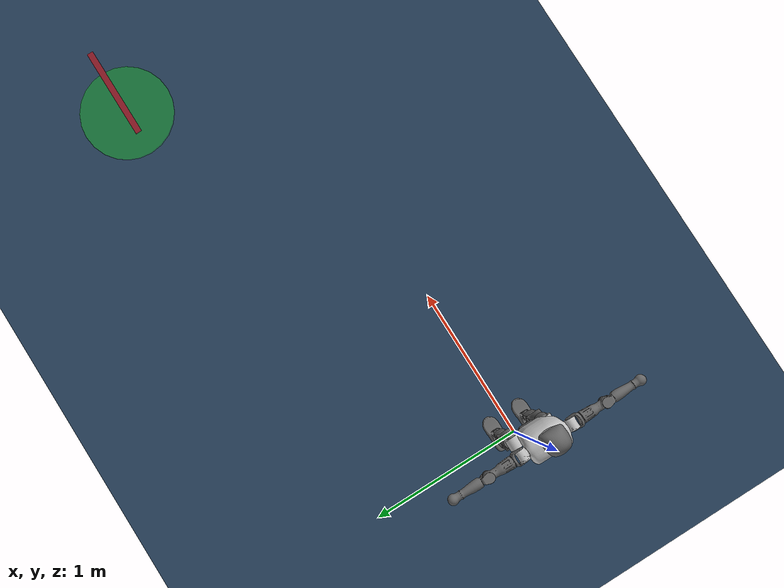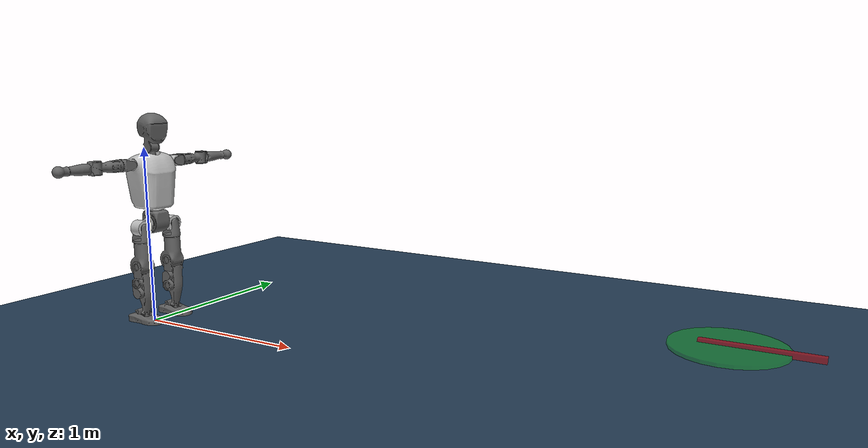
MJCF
<mujoco model="t1 navigation scene">
  <!-- Inherits t1.xml's simulation options (dt=.002, Euler, iterations=3/ls=5),
       matching the mujoco_playground T1 joystick training/deploy settings. -->
  <include file="t1.xml"/>

  <statistic center="0.0 0.0 0.5" extent="3"/>

  <visual>
    <headlight diffuse="0.6 0.6 0.6" ambient="0.1 0.1 0.1" specular="0.9 0.9 0.9"/>
    <rgba haze="0.15 0.25 0.35 1"/>
    <global azimuth="140" elevation="-20"/>
  </visual>

  <asset>
    <texture type="skybox" builtin="gradient" rgb1="0.3 0.5 0.7" rgb2="0 0 0" width="512" height="3072"/>
    <texture type="2d" name="groundplane" builtin="checker" mark="edge" rgb1="0.2 0.3 0.4" rgb2="0.1 0.2 0.3"
      markrgb="0.8 0.8 0.8" width="300" height="300"/>
    <material name="groundplane" texture="groundplane" texuniform="true" texrepeat="5 5" reflectance="0.2"/>
    <material name="goal_marker_mat" rgba="0 1 0 0.3"/>
  </asset>

  <worldbody>
    <geom name="floor" size="0 0 0.05" type="plane" material="groundplane" priority="1" friction="0.6" contype="1"
      conaffinity="2" condim="3"/>

    <!-- Goal marker (mocap body for interactive dragging) -->
    <body name="goal_marker" mocap="true" pos="3.0 1.0 0.05">
      <geom type="cylinder" size="0.3 0.01" material="goal_marker_mat" contype="0" conaffinity="0"/>
      <!-- Direction indicator -->
      <geom type="box" size="0.3 0.02 0.015" pos="0.15 0 0.01" rgba="1 0 0 0.5" contype="0" conaffinity="0"/>
    </body>
  </worldbody>

  <keyframe>
    <key name="home"
      qpos="
    0 0 0.665
    1 0 0 0
    0 0
    0 -1.4 0 -0.4
    0 1.4 0 0.4
    0
    -0.2 0 0 0.4 -0.2 0
    -0.2 0 0 0.4 -0.2 0
    "
      ctrl="
    0 0
    0 -1.4 0 -0.4
    0 1.4 0 0.4
    0
    -0.2 0 0 0.4 -0.2 0
    -0.2 0 0 0.4 -0.2 0
    "/>
  </keyframe>
</mujoco>

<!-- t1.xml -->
<mujoco model="T1">
  <compiler angle="radian" meshdir="assets" autolimits="true"/>

  <option iterations="3" ls_iterations="5" timestep=".002" integrator="Euler">
    <flag eulerdamp="disable"/>
  </option>

  <asset>
    <material name="light_gray" rgba="0.76 0.76 0.76 1"/>
    <material name="medium_gray" rgba="0.4 0.4 0.4 1"/>

    <mesh file="Trunk.stl"/>
    <mesh file="H1.stl"/>
    <mesh file="H2.stl"/>
    <mesh file="AL1.stl"/>
    <mesh file="AL2.stl"/>
    <mesh file="AL3.stl"/>
    <mesh file="left_hand_link.stl"/>
    <mesh file="AR1.stl"/>
    <mesh file="AR2.stl"/>
    <mesh file="AR3.stl"/>
    <mesh file="right_hand_link.stl"/>
    <mesh file="Waist.stl"/>
    <mesh file="Hip_Pitch_Left.stl"/>
    <mesh file="Hip_Roll_Left.stl"/>
    <mesh file="Hip_Yaw_Left.stl"/>
    <mesh file="Shank_Left.stl"/>
    <mesh file="Ankle_Cross_Left.stl"/>
    <mesh file="left_foot_link.stl"/>
    <mesh file="Hip_Pitch_Right.stl"/>
    <mesh file="Hip_Roll_Right.stl"/>
    <mesh file="Hip_Yaw_Right.stl"/>
    <mesh file="Shank_Right.stl"/>
    <mesh file="Ankle_Cross_Right.stl"/>
    <mesh file="right_foot_link.stl"/>
  </asset>

  <default>
    <default class="t1">
      <geom condim="1" contype="0" conaffinity="0" material="medium_gray"/>
      <site rgba="1 0 0 1" size="0.01" group="5"/>
      <default class="visual">
        <geom type="mesh" contype="0" conaffinity="0" group="2"/>
      </default>
      <default class="collision">
        <geom group="3"/>
        <default class="foot">
          <geom size="0.1115 0.05 0.015" pos="0.01 0 -0.015" type="box" contype="4" conaffinity="4"/>
          <default class="foot_sphere">
            <geom contype="2" conaffinity="1" size=".01" type="sphere"/>
          </default>
        </default>
      </default>

      <joint frictionloss="0.1" armature="0.005"/>
      <position inheritrange="1"/>

      <default class="head">
        <joint actuatorfrcrange="-7 7" damping="2"/>
        <position kp="20"/>
        <default class="head_yaw">
          <joint axis="0 0 1" range="-1.57 1.57"/>
        </default>
        <default class="head_pitch">
          <joint axis="0 1 0" range="-0.35 1.22"/>
        </default>
      </default>
      <default class="shoulder">
        <joint actuatorfrcrange="-18 18" damping="2"/>
        <position kp="20"/>
        <default class="shoulder_pitch">
          <joint axis="0 1 0" range="-3.31 1.22"/>
        </default>
        <default class="shoulder_roll">
          <joint axis="1 0 0"/>
        </default>
      </default>
      <default class="elbow">
        <joint actuatorfrcrange="-18 18" damping="2"/>
        <position kp="20"/>
        <default class="elbow_pitch">
          <joint axis="0 1 0" range="-2.27 2.27"/>
        </default>
        <default class="elbow_yaw">
          <joint axis="0 0 1"/>
        </default>
      </default>
      <default class="waist">
        <joint axis="0 0 1" range="-1.57 1.57" actuatorfrcrange="-30 30" damping="3"/>
        <position kp="50"/>
      </default>
      <default class="hip">
        <default class="hip_pitch">
          <joint axis="0 1 0" range="-1.8 1.57" actuatorfrcrange="-45 45" damping="3"/>
          <position kp="30"/>
        </default>
        <default class="hip_roll">
          <joint axis="1 0 0" actuatorfrcrange="-30 30" damping="3"/>
          <position kp="30"/>
        </default>
        <default class="hip_yaw">
          <joint axis="0 0 1" range="-1 1" actuatorfrcrange="-30 30" damping="3"/>
          <position kp="30"/>
        </default>
      </default>
      <default class="knee">
        <joint axis="0 1 0" range="0 2.34" actuatorfrcrange="-60 60" damping="3"/>
        <position kp="30"/>
      </default>
      <default class="ankle">
        <position kp="10"/>
        <joint damping="3"/>
        <default class="ankle_pitch">
          <joint axis="0 1 0" range="-0.87 0.35" actuatorfrcrange="-20 20"/>
        </default>
        <default class="ankle_roll">
          <joint axis="1 0 0" range="-0.44 0.44" actuatorfrcrange="-15 15"/>
        </default>
      </default>
    </default>
  </default>

  <worldbody>
    <light name="spotlight" mode="targetbodycom" target="Trunk" pos="0 -2 4" exponent="20"/>
    <body name="Trunk" pos="0 0 .7" childclass="t1">
      <freejoint/>
      <inertial pos="0.0551365 -1.42058e-06 0.105062" quat="0.99996 1.40561e-05 -0.00899532 -1.39249e-05" mass="11.7"
        diaginertia="0.0915404 0.0767787 0.0556055"/>
      <site name="imu"/>
      <camera name="track" pos="1.248 -0.947 0.5" xyaxes="0.628 0.779 -0.000 -0.274 0.221 0.936" mode="trackcom"/>
      <geom class="visual" material="light_gray" mesh="Trunk"/>
      <geom class="collision" size="0.075 0.1 0.15" pos="0.06 0 0.12" type="box"/>
      <body name="H1" pos="0.0625 0 0.243">
        <inertial pos="-0.000508 -0.001403 0.057432" quat="0.763881 -0.0132172 0.00173419 0.645219" mass="0.44391"
          diaginertia="0.000241549 0.00022351 0.000149941"/>
        <joint name="AAHead_yaw" class="head_yaw"/>
        <geom class="visual" mesh="H1"/>
        <body name="H2" pos="0 0 0.06185">
          <inertial pos="0.007802 0.001262 0.098631" quat="0.988453 0.106172 -0.0745686 -0.0782786" mass="0.631019"
            diaginertia="0.00203553 0.00192467 0.00172381"/>
          <joint name="Head_pitch" class="head_pitch"/>
          <geom class="visual" mesh="H2"/>
          <geom class="collision" size="0.08" pos="0.01 0 0.11"/>
        </body>
      </body>
      <body name="AL1" pos="0.0575 0.1063 0.219" quat="1 0 0.000440565 0">
        <inertial pos="-0.000677 0.044974 0" quat="0.50423 0.495734 -0.50423 0.495734" mass="0.53"
          diaginertia="0.001367 0.00129329 0.000292711"/>
        <joint name="Left_Shoulder_Pitch" class="shoulder_pitch"/>
        <geom class="visual" material="light_gray" mesh="AL1"/>
        <body name="AL2" pos="0 0.047 0">
          <inertial pos="0.003862 0.037976 0" quat="0.487991 0.511727 -0.487991 0.511727" mass="0.16"
            diaginertia="0.000401 0.00034538 0.00017662"/>
          <joint name="Left_Shoulder_Roll" range="-1.74 1.57" class="shoulder_roll"/>
          <geom class="visual" mesh="AL2"/>
          <body name="AL3" pos="0.00025 0.0605 0">
            <inertial pos="0 0.085353 -9.9e-05" quat="0.70641 0.707803 0 0" mass="1.02"
              diaginertia="0.012869 0.012798 0.000620953"/>
            <joint name="Left_Elbow_Pitch" class="elbow_pitch"/>
            <geom class="visual" mesh="AL3"/>
            <geom class="collision" size="0.03 0.075" pos="0 0.05 0" quat="0.707105 0.707108 0 0" type="cylinder"/>
            <body name="left_hand_link" pos="0 0.1471 0">
              <inertial pos="-0.000108 0.109573 0.000591" quat="0.707866 0.706347 -5.22939e-05 -0.000214913"
                mass="0.327214" diaginertia="0.008159 0.00813104 0.000214962"/>
              <joint name="Left_Elbow_Yaw" range="-2.44 0" class="elbow_yaw"/>
              <geom class="visual" mesh="left_hand_link"/>
              <geom class="collision" size="0.03 0.0875" pos="0 0.13 0" quat="0.707105 0.707108 0 0" type="cylinder"/>
              <site name="left_hand" pos="0 .215 0"/>
            </body>
          </body>
        </body>
      </body>
      <body name="AR1" pos="0.0575 -0.1063 0.219" quat="1 0 0.000440565 0">
        <inertial pos="-0.000677 -0.044974 0" quat="0.50423 0.495734 -0.50423 0.495734" mass="0.53"
          diaginertia="0.001367 0.00129329 0.000292711"/>
        <joint name="Right_Shoulder_Pitch" class="shoulder_pitch"/>
        <geom class="visual" material="light_gray" mesh="AR1"/>
        <body name="AR2" pos="0 -0.047 0">
          <inertial pos="0.003862 -0.037976 0" quat="0.511727 0.487991 -0.511727 0.487991" mass="0.16"
            diaginertia="0.000401 0.00034538 0.00017662"/>
          <joint name="Right_Shoulder_Roll" range="-1.57 1.74" class="shoulder_roll"/>
          <geom class="visual" mesh="AR2"/>
          <body name="AR3" pos="0.00025 -0.0605 0">
            <inertial pos="0 -0.085353 -9.9e-05" quat="0.707803 0.70641 0 0" mass="1.02"
              diaginertia="0.012869 0.012798 0.000620953"/>
            <joint name="Right_Elbow_Pitch" class="elbow_pitch"/>
            <geom class="visual" mesh="AR3"/>
            <geom class="collision" size="0.03 0.075" pos="0 -0.05 0" quat="0.707105 0.707108 0 0" type="cylinder"/>
            <body name="right_hand_link" pos="0 -0.1471 0">
              <inertial pos="-0.000108 -0.109573 0.000591" quat="0.706347 0.707866 0.000214913 5.22939e-05"
                mass="0.327214" diaginertia="0.008159 0.00813104 0.000214962"/>
              <joint name="Right_Elbow_Yaw" range="0 2.44" class="elbow_yaw"/>
              <geom class="visual" mesh="right_hand_link"/>
              <geom class="collision" size="0.03 0.0875" pos="0 -0.13 0" quat="0.707105 0.707108 0 0" type="cylinder"/>
              <site name="right_hand" pos="0 -.215 0"/>
            </body>
          </body>
        </body>
      </body>
      <body name="Waist" pos="0.0625 0 -0.1155">
        <inertial pos="0.002284 3e-06 0.007301" quat="0.983649 0.000360386 -0.180076 0.00269791" mass="2.581"
          diaginertia="0.00536742 0.005299 0.00474258"/>
        <joint name="Waist" class="waist"/>
        <geom class="visual" mesh="Waist"/>
        <body name="Hip_Pitch_Left" pos="0 0.106 0">
          <inertial pos="0.000534 -0.007296 -0.018083" quat="0.975141 0.2211 0.0145808 0.0017406" mass="1.021"
            diaginertia="0.00180547 0.00145926 0.00125327"/>
          <joint name="Left_Hip_Pitch" class="hip_pitch"/>
          <geom class="visual" material="light_gray" mesh="Hip_Pitch_Left"/>
          <body name="Hip_Roll_Left" pos="0 0 -0.02">
            <inertial pos="0.001101 2.4e-05 -0.05375" quat="0.707081 -0.00599604 -0.00599604 0.707081" mass="0.385"
              diaginertia="0.001743 0.00151729 0.000514712"/>
            <joint name="Left_Hip_Roll" range="-0.2 1.57" class="hip_roll"/>
            <geom class="visual" mesh="Hip_Roll_Left"/>
            <body name="Hip_Yaw_Left" pos="0 0 -0.081854">
              <inertial pos="-0.007233 0.000206 -0.089184" quat="0.696808 -0.033953 -0.0315708 0.715758" mass="2.166"
                diaginertia="0.0257334 0.0253024 0.00259215"/>
              <joint name="Left_Hip_Yaw" class="hip_yaw"/>
              <geom class="visual" mesh="Hip_Yaw_Left"/>
              <geom class="collision" size="0.05 0.08" type="cylinder"/>
              <body name="Shank_Left" pos="-0.014 0 -0.134">
                <inertial pos="-0.006012 0.000259 -0.124318" quat="0.997573 0.00144024 -0.023949 0.0653706" mass="1.73"
                  diaginertia="0.0346951 0.0345375 0.00185844"/>
                <joint name="Left_Knee_Pitch" class="knee"/>
                <geom class="visual" mesh="Shank_Left"/>
                <geom class="collision" size="0.05 0.075" pos="0 0 -0.12" type="cylinder"/>
                <body name="Ankle_Cross_Left" pos="0 0 -0.28">
                  <inertial pos="-0.003722 0 -0.007981" quat="0.443136 0.551027 0.551027 0.443136" mass="0.073"
                    diaginertia="2.9e-05 2.56589e-05 1.13411e-05"/>
                  <joint name="Left_Ankle_Pitch" class="ankle_pitch"/>
                  <geom class="visual" mesh="Ankle_Cross_Left"/>
                  <body name="left_foot_link" pos="0 0.00025 -0.012">
                    <inertial pos="-0.000249 0 -0.00914" quat="0 0.620755 0 0.784005" mass="0.685"
                      diaginertia="0.00269786 0.002385 0.00218714"/>
                    <joint name="Left_Ankle_Roll" class="ankle_roll"/>
                    <geom class="visual" mesh="left_foot_link"/>
                    <geom name="left_foot" class="foot"/>
                    <site name="left_foot"/>
                    <geom name="left_foot_1" class="foot_sphere" pos="0.1015 0.04 -0.02"/>
                    <geom name="left_foot_2" class="foot_sphere" pos="0.1015 -0.04 -0.02"/>
                    <geom name="left_foot_3" class="foot_sphere" pos="-0.1015 0.04 -0.02"/>
                    <geom name="left_foot_4" class="foot_sphere" pos="-0.1015 -0.04 -0.02"/>
                  </body>
                </body>
              </body>
            </body>
          </body>
        </body>
        <body name="Hip_Pitch_Right" pos="0 -0.106 0">
          <inertial pos="0.000534 0.007514 -0.018082" quat="0.973446 -0.228403 0.0147148 -0.00419349" mass="1.021"
            diaginertia="0.00180552 0.0014632 0.00124928"/>
          <joint name="Right_Hip_Pitch" class="hip_pitch"/>
          <geom class="visual" material="light_gray" mesh="Hip_Pitch_Right"/>
          <body name="Hip_Roll_Right" pos="0 0 -0.02">
            <inertial pos="0.001099 2.4e-05 -0.053748" quat="0.707081 -0.00599604 -0.00599604 0.707081" mass="0.385"
              diaginertia="0.001743 0.00151729 0.000514712"/>
            <joint name="Right_Hip_Roll" range="-1.57 0.2" class="hip_roll"/>
            <geom class="visual" mesh="Hip_Roll_Right"/>
            <body name="Hip_Yaw_Right" pos="0 0 -0.081854">
              <inertial pos="-0.007191 -0.000149 -0.08922" quat="0.714468 -0.0315638 -0.0336391 0.698146" mass="2.17"
                diaginertia="0.0257623 0.0253298 0.00259389"/>
              <joint name="Right_Hip_Yaw" class="hip_yaw"/>
              <geom class="visual" mesh="Hip_Yaw_Right"/>
              <geom class="collision" size="0.05 0.08" type="cylinder"/>
              <body name="Shank_Right" pos="-0.014 0 -0.134">
                <inertial pos="-0.005741 -0.000541 -0.122602" quat="0.99926 -0.000580963 -0.023461 -0.0304754"
                  mass="1.79" diaginertia="0.0351717 0.0349574 0.00196589"/>
                <joint name="Right_Knee_Pitch" class="knee"/>
                <geom class="visual" mesh="Shank_Right"/>
                <geom class="collision" size="0.05 0.075" pos="0 0 -0.12" type="cylinder"/>
                <body name="Ankle_Cross_Right" pos="0 0 -0.28">
                  <inertial pos="-0.003722 0 -0.007981" quat="0.443136 0.551027 0.551027 0.443136" mass="0.073"
                    diaginertia="2.9e-05 2.56589e-05 1.13411e-05"/>
                  <joint name="Right_Ankle_Pitch" class="ankle_pitch"/>
                  <geom class="visual" mesh="Ankle_Cross_Right"/>
                  <body name="right_foot_link" pos="0 -0.00025 -0.012">
                    <inertial pos="-0.000248 0 -0.00914" quat="0 0.620755 0 0.784005" mass="0.685"
                      diaginertia="0.00269786 0.002385 0.00218714"/>
                    <joint name="Right_Ankle_Roll" class="ankle_roll"/>
                    <geom class="visual" mesh="right_foot_link"/>
                    <geom name="right_foot" class="foot"/>
                    <site name="right_foot"/>
                    <geom name="right_foot_1" class="foot_sphere" pos="0.1015 0.04 -0.02"/>
                    <geom name="right_foot_2" class="foot_sphere" pos="0.1015 -0.04 -0.02"/>
                    <geom name="right_foot_3" class="foot_sphere" pos="-0.1015 0.04 -0.02"/>
                    <geom name="right_foot_4" class="foot_sphere" pos="-0.1015 -0.04 -0.02"/>
                  </body>
                </body>
              </body>
            </body>
          </body>
        </body>
      </body>
    </body>
  </worldbody>

  <sensor>
    <gyro site="imu" name="gyro"/>
    <velocimeter site="imu" name="local_linvel"/>
    <accelerometer site="imu" name="accelerometer"/>
    <framezaxis objtype="site" objname="imu" name="upvector"/>
    <framexaxis objtype="site" objname="imu" name="forwardvector"/>
    <framelinvel objtype="site" objname="imu" name="global_linvel"/>
    <frameangvel objtype="site" objname="imu" name="global_angvel"/>
    <framepos objtype="site" objname="imu" name="position"/>
    <framequat objtype="site" objname="imu" name="orientation"/>
    <framelinvel objtype="site" objname="left_foot" name="left_foot_global_linvel"/>
    <framelinvel objtype="site" objname="right_foot" name="right_foot_global_linvel"/>
    <framepos objtype="site" objname="left_foot" name="left_foot_pos"/>
    <framepos objtype="site" objname="right_foot" name="right_foot_pos"/>
  </sensor>

  <actuator>
    <position class="head_yaw" name="AAHead_yaw" joint="AAHead_yaw"/>
    <position class="head_pitch" name="Head_pitch" joint="Head_pitch"/>

    <position class="shoulder_pitch" name="Left_Shoulder_Pitch" joint="Left_Shoulder_Pitch"/>
    <position class="shoulder_roll" name="Left_Shoulder_Roll" joint="Left_Shoulder_Roll"/>
    <position class="elbow_pitch" name="Left_Elbow_Pitch" joint="Left_Elbow_Pitch"/>
    <position class="elbow_yaw" name="Left_Elbow_Yaw" joint="Left_Elbow_Yaw"/>

    <position class="shoulder_pitch" name="Right_Shoulder_Pitch" joint="Right_Shoulder_Pitch"/>
    <position class="shoulder_roll" name="Right_Shoulder_Roll" joint="Right_Shoulder_Roll"/>
    <position class="elbow_pitch" name="Right_Elbow_Pitch" joint="Right_Elbow_Pitch"/>
    <position class="elbow_yaw" name="Right_Elbow_Yaw" joint="Right_Elbow_Yaw"/>

    <position class="waist" name="Waist" joint="Waist"/>

    <position class="hip_pitch" name="Left_Hip_Pitch" joint="Left_Hip_Pitch"/>
    <position class="hip_roll" name="Left_Hip_Roll" joint="Left_Hip_Roll"/>
    <position class="hip_yaw" name="Left_Hip_Yaw" joint="Left_Hip_Yaw"/>
    <position class="knee" name="Left_Knee_Pitch" joint="Left_Knee_Pitch"/>
    <position class="ankle_pitch" name="Left_Ankle_Pitch" joint="Left_Ankle_Pitch"/>
    <position class="ankle_roll" name="Left_Ankle_Roll" joint="Left_Ankle_Roll"/>

    <position class="hip_pitch" name="Right_Hip_Pitch" joint="Right_Hip_Pitch"/>
    <position class="hip_roll" name="Right_Hip_Roll" joint="Right_Hip_Roll"/>
    <position class="hip_yaw" name="Right_Hip_Yaw" joint="Right_Hip_Yaw"/>
    <position class="knee" name="Right_Knee_Pitch" joint="Right_Knee_Pitch"/>
    <position class="ankle_pitch" name="Right_Ankle_Pitch" joint="Right_Ankle_Pitch"/>
    <position class="ankle_roll" name="Right_Ankle_Roll" joint="Right_Ankle_Roll"/>
  </actuator>
</mujoco>
